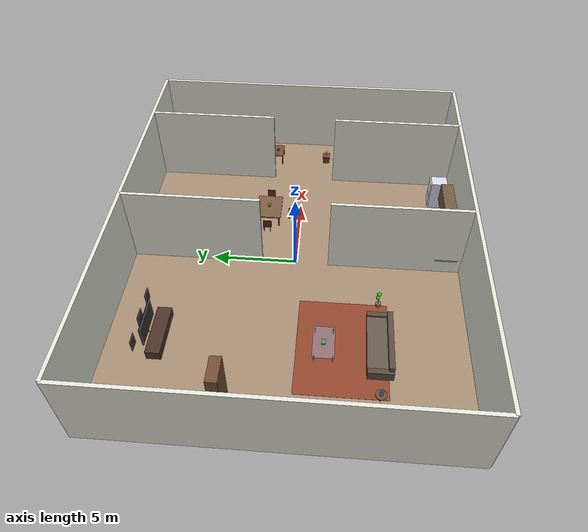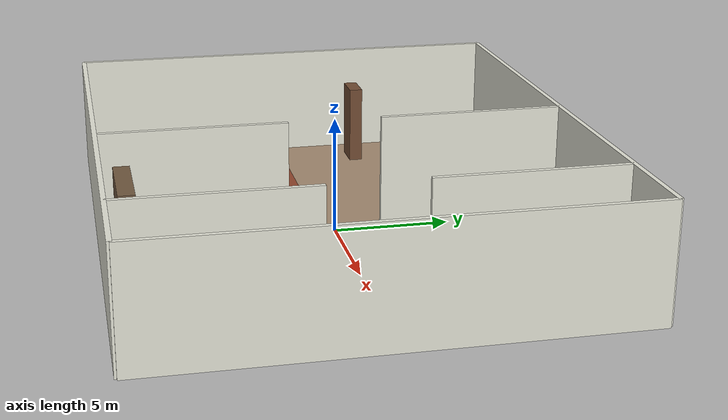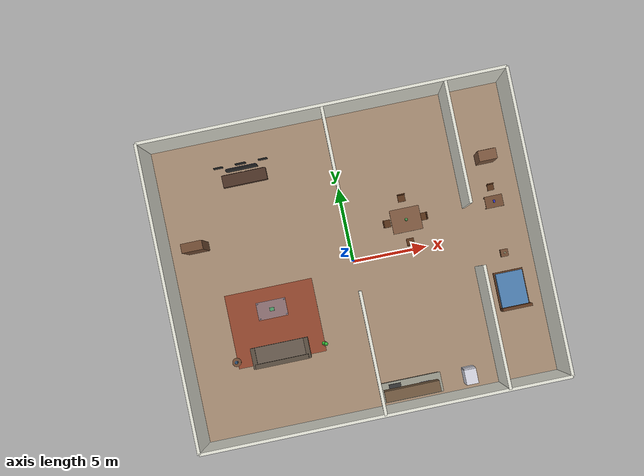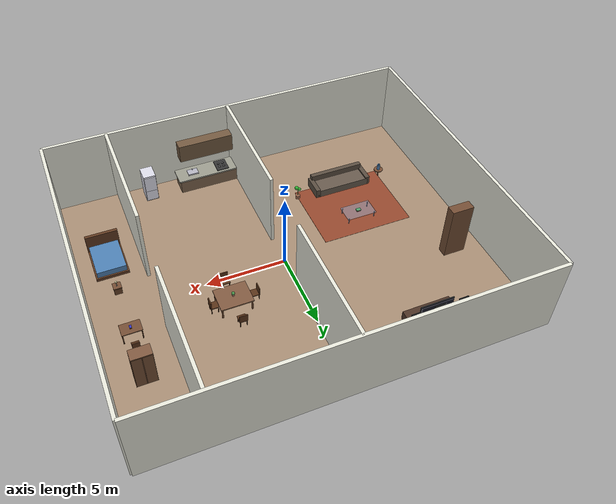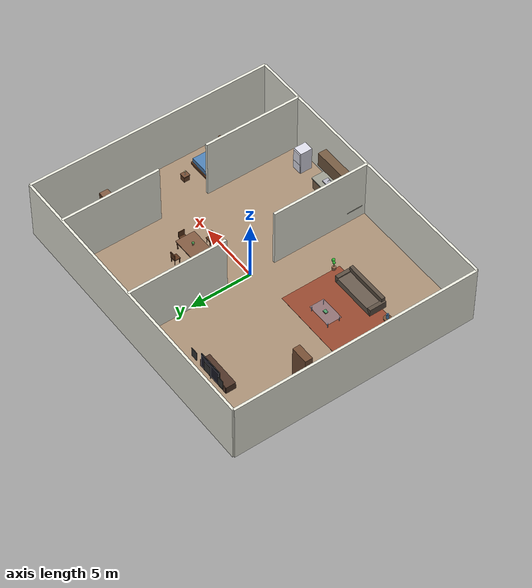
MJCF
<mujoco model="bedroom_scene">
  <compiler angle="degree" coordinate="local" inertiafromgeom="true" autolimits="true"/>

  <option timestep="0.002" gravity="0 0 -9.81" iterations="50" tolerance="1e-10" solver="Newton" jacobian="auto">
    <flag warmstart="enable" energy="enable" contact="enable"/>
  </option>

  <size nconmax="500" njmax="2000" nstack="500000"/>

  <visual>
    <headlight diffuse="0.6 0.6 0.6" ambient="0.3 0.3 0.3" specular="0 0 0"/>
    <rgba haze="0.15 0.25 0.35 1"/>
    <global offwidth="1920" offheight="1080"/>
    <quality shadowsize="2048"/>
    <map stiffness="700" shadowscale="0.5"/>
  </visual>

  <asset>
    <!-- 纹理定义 -->
    <texture name="floor_texture" type="2d" builtin="checker" rgb1="0.7 0.6 0.5" rgb2="0.6 0.5 0.4" width="512" height="512"/>
    <texture name="wall_texture" type="2d" builtin="flat" rgb1="0.9 0.9 0.85" width="512" height="512"/>
    <texture name="wood_texture" type="2d" builtin="checker" rgb1="0.4 0.25 0.15" rgb2="0.35 0.2 0.1" width="512" height="512"/>
    <texture name="wood_dark_texture" type="2d" builtin="checker" rgb1="0.3 0.2 0.1" rgb2="0.25 0.15 0.08" width="512" height="512"/>
    <texture name="fabric_texture" type="2d" builtin="flat" rgb1="0.3 0.5 0.7" width="512" height="512"/>
    <texture name="metal_texture" type="2d" builtin="flat" rgb1="0.7 0.7 0.8" width="512" height="512"/>
    <texture name="glass_texture" type="2d" builtin="flat" rgb1="0.8 0.9 1.0" width="256" height="256"/>
    <texture name="carpet_texture" type="2d" builtin="checker" rgb1="0.6 0.3 0.2" rgb2="0.55 0.25 0.15" width="512" height="512"/>
    <texture name="marble_texture" type="2d" builtin="checker" rgb1="0.9 0.9 0.88" rgb2="0.85 0.85 0.83" width="512" height="512"/>

    <!-- 材质定义 - 改进的物理属性 -->
    <material name="floor_mat" texture="floor_texture" texrepeat="8 8" specular="0.4" shininess="0.15" reflectance="0.1"/>
    <material name="wall_mat" texture="wall_texture" specular="0.1" shininess="0.05" reflectance="0.02"/>
    <material name="wood_mat" texture="wood_texture" texrepeat="2 2" specular="0.3" shininess="0.15" reflectance="0.05"/>
    <material name="wood_dark_mat" texture="wood_dark_texture" texrepeat="2 2" specular="0.3" shininess="0.15" reflectance="0.05"/>
    <material name="fabric_mat" texture="fabric_texture" specular="0.05" shininess="0.02" reflectance="0"/>
    <material name="metal_mat" texture="metal_texture" specular="0.9" shininess="0.6" reflectance="0.3"/>
    <material name="glass_mat" texture="glass_texture" specular="0.95" shininess="0.9" reflectance="0.5" rgba="0.7 0.8 0.9 0.4"/>
    <material name="carpet_mat" texture="carpet_texture" texrepeat="4 4" specular="0.02" shininess="0.01" reflectance="0"/>
    <material name="marble_mat" texture="marble_texture" texrepeat="3 3" specular="0.7" shininess="0.4" reflectance="0.2"/>
  </asset>

  <!-- 默认几何体属性 -->
  <default>
    <default class="furniture">
      <geom contype="1" conaffinity="1" condim="3" friction="0.7 0.005 0.0001" solimp="0.9 0.95 0.001" solref="0.02 1"/>
    </default>

    <default class="decoration">
      <geom contype="0" conaffinity="0" mass="0"/>
    </default>
  </default>

  <worldbody>
    <!-- ========== 光照系统 ========== -->
    <!-- 主全局光源 -->
    <light directional="true" diffuse="0.9 0.9 0.9" specular="0.3 0.3 0.3" pos="0 0 5" dir="0 0 -1" castshadow="true"/>

    <!-- 书房区域光源 (最大房间) -->
    <light mode="fixed" pos="-6 0 4" dir="0 0 -1" directional="false" diffuse="0.5 0.5 0.4" specular="0.1 0.1 0.1" attenuation="1 0 0" cutoff="70"/>

    <!-- 厨房区域光源 (中等房间) -->
    <light mode="fixed" pos="4 0 4.5" dir="0 0 -1" directional="false" diffuse="0.7 0.7 0.7" specular="0.25 0.25 0.25" attenuation="1 0 0" cutoff="60"/>

    <!-- 客厅区域光源 (最小房间) -->
    <light mode="fixed" pos="10 0 4" dir="0 0 -1" directional="false" diffuse="0.6 0.6 0.6" specular="0.2 0.2 0.2" attenuation="1 0 0" cutoff="50"/>

    <!-- ========== 环境结构 ========== -->
    <!-- 地板 -->
    <geom name="floor" type="plane" size="12 10 0.1" pos="0 0 0" material="floor_mat" contype="0" conaffinity="1" condim="3" friction="1 0.005 0.0001"/>

    <!-- 外墙 -->
    <geom name="wall_back" type="box" size="12 0.1 2.5" pos="0 -10 2.5" material="wall_mat" contype="0" conaffinity="1"/>
    <geom name="wall_front" type="box" size="12 0.1 2.5" pos="0 10 2.5" material="wall_mat" contype="0" conaffinity="1"/>
    <geom name="wall_left" type="box" size="0.1 10 2.5" pos="-12 0 2.5" material="wall_mat" contype="0" conaffinity="1"/>
    <geom name="wall_right" type="box" size="0.1 10 2.5" pos="12 0 2.5" material="wall_mat" contype="0" conaffinity="1"/>

    <!-- 内墙 - 分隔三个房间 (客厅:厨房:卧室 = 3:2:1) -->
    <!-- 客厅与厨房之间的墙 (x=0位置，带门洞) -->
    <geom name="wall_living_kitchen_bottom" type="box" size="0.1 4 2.5" pos="0 -6 2.5" material="wall_mat" contype="0" conaffinity="1"/>
    <geom name="wall_living_kitchen_top" type="box" size="0.1 4 2.5" pos="0 6 2.5" material="wall_mat" contype="0" conaffinity="1"/>

    <!-- 厨房与卧室之间的墙 (x=8位置，带门洞) -->
    <geom name="wall_kitchen_bedroom_bottom" type="box" size="0.1 4 2.5" pos="8 -6 2.5" material="wall_mat" contype="0" conaffinity="1"/>
    <geom name="wall_kitchen_bedroom_top" type="box" size="0.1 4 2.5" pos="8 6 2.5" material="wall_mat" contype="0" conaffinity="1"/>

    <!-- ========== 客厅区域 (左侧房间, -12到0, 12m宽) ========== -->
    <!-- 沙发 -->
    <body name="sofa_main" pos="-6 -5 0">
      <geom name="sofa_seat" type="box" size="1.8 0.7 0.25" pos="0 0 0.45" material="fabric_mat" rgba="0.4 0.35 0.3 1"/>
      <geom name="sofa_back" type="box" size="1.8 0.15 0.4" pos="0 -0.55 0.7" material="fabric_mat" rgba="0.35 0.3 0.25 1"/>
      <geom name="sofa_arm_left" type="box" size="0.15 0.7 0.3" pos="-1.8 0 0.5" material="fabric_mat" rgba="0.35 0.3 0.25 1"/>
      <geom name="sofa_arm_right" type="box" size="0.15 0.7 0.3" pos="1.8 0 0.5" material="fabric_mat" rgba="0.35 0.3 0.25 1"/>
    </body>

    <!-- 茶几 -->
    <body name="coffee_table" pos="-6 -2 0">
      <geom name="coffee_table_top" type="box" size="1 0.6 0.02" pos="0 0 0.4" material="glass_mat"/>
      <geom name="coffee_leg1" type="cylinder" size="0.03 0.2" pos="0.9 0.5 0.2" material="metal_mat"/>
      <geom name="coffee_leg2" type="cylinder" size="0.03 0.2" pos="-0.9 0.5 0.2" material="metal_mat"/>
      <geom name="coffee_leg3" type="cylinder" size="0.03 0.2" pos="0.9 -0.5 0.2" material="metal_mat"/>
      <geom name="coffee_leg4" type="cylinder" size="0.03 0.2" pos="-0.9 -0.5 0.2" material="metal_mat"/>
    </body>

    <!-- 电视柜 -->
    <body name="tv_stand" pos="-6 7 0">
      <geom name="tv_stand_body" type="box" size="1.5 0.4 0.3" pos="0 0 0.3" material="wood_mat" rgba="0.3 0.2 0.15 1"/>
      <geom name="tv_stand_door_l" type="box" size="0.7 0.03 0.25" pos="-0.75 0.4 0.3" material="wood_mat" rgba="0.35 0.25 0.2 1"/>
      <geom name="tv_stand_door_r" type="box" size="0.7 0.03 0.25" pos="0.75 0.4 0.3" material="wood_mat" rgba="0.35 0.25 0.2 1"/>
    </body>

    <!-- 电视 -->
    <body name="tv" pos="-6 7.6 0.6">
      <geom name="tv_screen" type="box" size="1 0.05 0.6" pos="0 0 0.6" rgba="0.1 0.1 0.15 1"/>
      <geom name="tv_frame" type="box" size="1.05 0.03 0.65" pos="0 -0.03 0.6" rgba="0.2 0.2 0.2 1"/>
      <geom name="tv_stand_pole" type="cylinder" size="0.04 0.15" pos="0 0 -0.15" rgba="0.3 0.3 0.3 1"/>
    </body>

    <!-- 边桌 -->
    <body name="side_table" pos="-9 -5 0">
      <geom name="side_table_top" type="cylinder" size="0.3 0.03" pos="0 0 0.55" material="wood_mat" rgba="0.45 0.3 0.2 1"/>
      <geom name="side_table_leg" type="cylinder" size="0.04 0.55" pos="0 0 0.275" material="wood_mat" rgba="0.4 0.25 0.15 1"/>
    </body>

    <!-- 地毯 -->
    <body name="carpet" pos="-6 -3 0.005">
      <geom name="carpet_geom" type="box" size="3 2.5 0.005" pos="0 0 0" material="carpet_mat" contype="0" conaffinity="1"/>
    </body>

    <!-- 书架 -->
    <body name="bookshelf" pos="-10 3 0">
      <geom name="bookshelf_body" type="box" size="0.7 0.3 1.8" pos="0 0 1.8" material="wood_mat" rgba="0.45 0.3 0.2 1"/>
    </body>

    <!-- ========== 厨房区域 (中间房间, 0到8, 8m宽) ========== -->
    <!-- 橱柜 (地柜) -->
    <body name="kitchen_cabinet_lower" pos="2 -9 0">
      <geom name="cabinet_lower_body" type="box" size="2 0.6 0.45" pos="0 0 0.45" material="wood_mat" rgba="0.5 0.4 0.3 1"/>
      <geom name="countertop" type="box" size="2.1 0.65 0.05" pos="0 0 0.95" material="wood_mat" rgba="0.6 0.6 0.55 1"/>
    </body>

    <!-- 橱柜 (墙柜) -->
    <body name="kitchen_cabinet_upper" pos="2 -9 3">
      <geom name="cabinet_upper_body" type="box" size="1.8 0.35 0.6" pos="0 0 0" material="wood_mat" rgba="0.45 0.35 0.25 1"/>
    </body>

    <!-- 炉台 -->
    <body name="stove" pos="1 -9 1.0">
      <geom name="stove_top" type="box" size="0.4 0.5 0.05" pos="0 0 0" rgba="0.2 0.2 0.2 1"/>
      <geom name="burner1" type="cylinder" size="0.08 0.01" pos="-0.15 0.15 0.06" rgba="0.3 0.3 0.3 1"/>
      <geom name="burner2" type="cylinder" size="0.08 0.01" pos="0.15 0.15 0.06" rgba="0.3 0.3 0.3 1"/>
      <geom name="burner3" type="cylinder" size="0.08 0.01" pos="-0.15 -0.15 0.06" rgba="0.3 0.3 0.3 1"/>
      <geom name="burner4" type="cylinder" size="0.08 0.01" pos="0.15 -0.15 0.06" rgba="0.3 0.3 0.3 1"/>
    </body>

    <!-- 冰箱 -->
    <body name="refrigerator" pos="6 -9 0">
      <geom name="fridge_body" type="box" size="0.4 0.5 1.0" pos="0 0 1.0" rgba="0.85 0.85 0.9 1" material="metal_mat"/>
      <geom name="fridge_door_upper" type="box" size="0.38 0.05 0.55" pos="0 0.52 1.4" rgba="0.9 0.9 0.95 1"/>
      <geom name="fridge_door_lower" type="box" size="0.38 0.05 0.4" pos="0 0.52 0.5" rgba="0.9 0.9 0.95 1"/>
      <geom name="fridge_handle_upper" type="cylinder" size="0.02 0.15" pos="0.2 0.55 1.4" euler="0 90 0" rgba="0.5 0.5 0.5 1"/>
      <geom name="fridge_handle_lower" type="cylinder" size="0.02 0.15" pos="0.2 0.55 0.5" euler="0 90 0" rgba="0.5 0.5 0.5 1"/>
    </body>

    <!-- 水槽 -->
    <body name="sink" pos="3 -9 1.0">
      <geom name="sink_basin" type="box" size="0.35 0.25 0.15" pos="0 0 -0.05" rgba="0.7 0.7 0.75 1" material="metal_mat"/>
      <geom name="faucet_base" type="cylinder" size="0.02 0.05" pos="0 -0.2 0.05" rgba="0.6 0.6 0.65 1"/>
      <geom name="faucet_neck" type="capsule" size="0.015" fromto="0 -0.2 0.1 0 -0.1 0.25" rgba="0.6 0.6 0.65 1"/>
      <geom name="faucet_spout" type="capsule" size="0.012" fromto="0 -0.1 0.25 0 0.05 0.2" rgba="0.6 0.6 0.65 1"/>
    </body>

    <!-- 餐桌 -->
    <body name="dining_table" pos="4 2 0">
      <geom name="dining_top" type="box" size="1 0.8 0.04" pos="0 0 0.75" material="wood_mat" rgba="0.5 0.35 0.25 1"/>
      <geom name="dining_leg1" type="cylinder" size="0.05 0.375" pos="0.9 0.7 0.375" material="wood_mat" rgba="0.4 0.25 0.15 1"/>
      <geom name="dining_leg2" type="cylinder" size="0.05 0.375" pos="-0.9 0.7 0.375" material="wood_mat" rgba="0.4 0.25 0.15 1"/>
      <geom name="dining_leg3" type="cylinder" size="0.05 0.375" pos="0.9 -0.7 0.375" material="wood_mat" rgba="0.4 0.25 0.15 1"/>
      <geom name="dining_leg4" type="cylinder" size="0.05 0.375" pos="-0.9 -0.7 0.375" material="wood_mat" rgba="0.4 0.25 0.15 1"/>
    </body>

    <!-- 餐椅1 -->
    <body name="dining_chair1" pos="4 0.5 0">
      <geom name="dchair1_seat" type="box" size="0.25 0.25 0.03" pos="0 0 0.45" material="wood_mat" rgba="0.35 0.2 0.1 1"/>
      <geom name="dchair1_back" type="box" size="0.25 0.03 0.25" pos="0 -0.22 0.7" material="wood_mat" rgba="0.35 0.2 0.1 1"/>
      <geom name="dchair1_leg1" type="cylinder" size="0.025 0.225" pos="0.2 0.2 0.225" material="wood_mat" rgba="0.35 0.2 0.1 1"/>
      <geom name="dchair1_leg2" type="cylinder" size="0.025 0.225" pos="-0.2 0.2 0.225" material="wood_mat" rgba="0.35 0.2 0.1 1"/>
      <geom name="dchair1_leg3" type="cylinder" size="0.025 0.225" pos="0.2 -0.2 0.225" material="wood_mat" rgba="0.35 0.2 0.1 1"/>
      <geom name="dchair1_leg4" type="cylinder" size="0.025 0.225" pos="-0.2 -0.2 0.225" material="wood_mat" rgba="0.35 0.2 0.1 1"/>
    </body>

    <!-- 餐椅2 -->
    <body name="dining_chair2" pos="4 3.5 0">
      <geom name="dchair2_seat" type="box" size="0.25 0.25 0.03" pos="0 0 0.45" material="wood_mat" rgba="0.35 0.2 0.1 1"/>
      <geom name="dchair2_back" type="box" size="0.25 0.03 0.25" pos="0 0.22 0.7" material="wood_mat" rgba="0.35 0.2 0.1 1"/>
      <geom name="dchair2_leg1" type="cylinder" size="0.025 0.225" pos="0.2 0.2 0.225" material="wood_mat" rgba="0.35 0.2 0.1 1"/>
      <geom name="dchair2_leg2" type="cylinder" size="0.025 0.225" pos="-0.2 0.2 0.225" material="wood_mat" rgba="0.35 0.2 0.1 1"/>
      <geom name="dchair2_leg3" type="cylinder" size="0.025 0.225" pos="0.2 -0.2 0.225" material="wood_mat" rgba="0.35 0.2 0.1 1"/>
      <geom name="dchair2_leg4" type="cylinder" size="0.025 0.225" pos="-0.2 -0.2 0.225" material="wood_mat" rgba="0.35 0.2 0.1 1"/>
    </body>

    <!-- 餐椅3 -->
    <body name="dining_chair3" pos="2.7 2 0">
      <geom name="dchair3_seat" type="box" size="0.25 0.25 0.03" pos="0 0 0.45" material="wood_mat" rgba="0.35 0.2 0.1 1"/>
      <geom name="dchair3_back" type="box" size="0.03 0.25 0.25" pos="-0.22 0 0.7" material="wood_mat" rgba="0.35 0.2 0.1 1"/>
      <geom name="dchair3_leg1" type="cylinder" size="0.025 0.225" pos="0.2 0.2 0.225" material="wood_mat" rgba="0.35 0.2 0.1 1"/>
      <geom name="dchair3_leg2" type="cylinder" size="0.025 0.225" pos="-0.2 0.2 0.225" material="wood_mat" rgba="0.35 0.2 0.1 1"/>
      <geom name="dchair3_leg3" type="cylinder" size="0.025 0.225" pos="0.2 -0.2 0.225" material="wood_mat" rgba="0.35 0.2 0.1 1"/>
      <geom name="dchair3_leg4" type="cylinder" size="0.025 0.225" pos="-0.2 -0.2 0.225" material="wood_mat" rgba="0.35 0.2 0.1 1"/>
    </body>

    <!-- 餐椅4 -->
    <body name="dining_chair4" pos="5.2 2 0">
      <geom name="dchair4_seat" type="box" size="0.25 0.25 0.03" pos="0 0 0.45" material="wood_mat" rgba="0.35 0.2 0.1 1"/>
      <geom name="dchair4_back" type="box" size="0.03 0.25 0.25" pos="0.22 0 0.7" material="wood_mat" rgba="0.35 0.2 0.1 1"/>
      <geom name="dchair4_leg1" type="cylinder" size="0.025 0.225" pos="0.2 0.2 0.225" material="wood_mat" rgba="0.35 0.2 0.1 1"/>
      <geom name="dchair4_leg2" type="cylinder" size="0.025 0.225" pos="-0.2 0.2 0.225" material="wood_mat" rgba="0.35 0.2 0.1 1"/>
      <geom name="dchair4_leg3" type="cylinder" size="0.025 0.225" pos="0.2 -0.2 0.225" material="wood_mat" rgba="0.35 0.2 0.1 1"/>
      <geom name="dchair4_leg4" type="cylinder" size="0.025 0.225" pos="-0.2 -0.2 0.225" material="wood_mat" rgba="0.35 0.2 0.1 1"/>
    </body>

    <!-- ========== 卧室区域 (右侧房间, 8到12, 4m宽) ========== -->
    <body name="bed" pos="10 -4 0">
      <geom name="mattress" type="box" size="0.9 1.2 0.3" pos="0 0 0.3" material="fabric_mat" rgba="0.3 0.5 0.7 1" density="300"/>
      <geom name="bed_frame" type="box" size="1 1.3 0.1" pos="0 0 0.1" material="wood_mat" density="500"/>
      <geom name="headboard" type="box" size="1 0.1 0.7" pos="0 -1.2 0.7" material="wood_mat" density="500"/>
    </body>

    <!-- 床头柜 -->
    <body name="nightstand" pos="10 -1.5 0">
      <geom name="nightstand_top" type="box" size="0.25 0.25 0.03" pos="0 0 0.5" material="wood_mat" rgba="0.45 0.3 0.2 1"/>
      <geom name="nightstand_body" type="box" size="0.23 0.23 0.22" pos="0 0 0.22" material="wood_mat" rgba="0.4 0.25 0.15 1"/>
    </body>

    <!-- 衣柜 -->
    <body name="wardrobe" pos="10 5 0">
      <geom name="wardrobe_body" type="box" size="0.6 0.35 1.2" pos="0 0 1.2" material="wood_mat" rgba="0.5 0.35 0.25 1"/>
      <geom name="wardrobe_door_left" type="box" size="0.28 0.02 1.15" pos="-0.3 0.35 1.2" material="wood_mat" rgba="0.45 0.3 0.2 1"/>
      <geom name="wardrobe_door_right" type="box" size="0.28 0.02 1.15" pos="0.3 0.35 1.2" material="wood_mat" rgba="0.45 0.3 0.2 1"/>
    </body>

    <!-- 小书桌 -->
    <body name="desk" pos="10 2 0">
      <geom name="desk_top" type="box" size="0.6 0.4 0.03" pos="0 0 0.75" material="wood_mat" rgba="0.45 0.3 0.2 1"/>
      <geom name="desk_leg1" type="cylinder" size="0.03 0.375" pos="0.55 0.35 0.375" material="wood_mat" rgba="0.4 0.25 0.15 1"/>
      <geom name="desk_leg2" type="cylinder" size="0.03 0.375" pos="-0.55 0.35 0.375" material="wood_mat" rgba="0.4 0.25 0.15 1"/>
      <geom name="desk_leg3" type="cylinder" size="0.03 0.375" pos="0.55 -0.35 0.375" material="wood_mat" rgba="0.4 0.25 0.15 1"/>
      <geom name="desk_leg4" type="cylinder" size="0.03 0.375" pos="-0.55 -0.35 0.375" material="wood_mat" rgba="0.4 0.25 0.15 1"/>
    </body>

    <!-- 椅子 -->
    <body name="chair" pos="10 3 0">
      <geom name="chair_seat" type="box" size="0.22 0.22 0.03" pos="0 0 0.45" material="wood_mat" rgba="0.35 0.2 0.1 1"/>
      <geom name="chair_back" type="box" size="0.22 0.03 0.22" pos="0 0.2 0.65" material="wood_mat" rgba="0.35 0.2 0.1 1"/>
      <geom name="chair_leg1" type="cylinder" size="0.02 0.225" pos="0.18 0.18 0.225" material="wood_mat" rgba="0.35 0.2 0.1 1"/>
      <geom name="chair_leg2" type="cylinder" size="0.02 0.225" pos="-0.18 0.18 0.225" material="wood_mat" rgba="0.35 0.2 0.1 1"/>
      <geom name="chair_leg3" type="cylinder" size="0.02 0.225" pos="0.18 -0.18 0.225" material="wood_mat" rgba="0.35 0.2 0.1 1"/>
      <geom name="chair_leg4" type="cylinder" size="0.02 0.225" pos="-0.18 -0.18 0.225" material="wood_mat" rgba="0.35 0.2 0.1 1"/>
    </body>

    <!-- ========== 装饰物品 ========== -->
    <!-- 台灯 (床头柜上) -->
    <body name="lamp" pos="10 -1.5 0.53" childclass="decoration">
      <geom name="lamp_base" type="cylinder" size="0.04 0.02" rgba="0.6 0.6 0.6 1"/>
      <geom name="lamp_pole" type="cylinder" size="0.008 0.12" pos="0 0 0.14" rgba="0.5 0.5 0.5 1"/>
      <geom name="lamp_shade" type="cylinder" size="0.06 0.05" pos="0 0 0.3" rgba="0.9 0.9 0.7 0.8"/>
    </body>

    <!-- 书本 (书桌上) -->
    <body name="books" pos="10 2 0.78" childclass="decoration">
      <geom name="book1" type="box" size="0.06 0.1 0.015" pos="0 0 0.015" rgba="0.8 0.2 0.2 1"/>
      <geom name="book2" type="box" size="0.06 0.1 0.015" pos="0 0 0.045" rgba="0.2 0.8 0.2 1"/>
      <geom name="book3" type="box" size="0.06 0.1 0.015" pos="0 0 0.075" rgba="0.2 0.2 0.8 1"/>
    </body>

    <!-- 客厅花瓶 (边桌上) -->
    <body name="vase" pos="-9 -5 0.58" childclass="decoration">
      <geom name="vase_body" type="cylinder" size="0.1 0.18" pos="0 0 0.18" rgba="0.3 0.5 0.7 1"/>
      <geom name="vase_neck" type="cylinder" size="0.05 0.06" pos="0 0 0.4" rgba="0.3 0.5 0.7 1"/>
    </body>

    <!-- 茶几上的书 -->
    <body name="coffee_table_books" pos="-6 -2 0.42" childclass="decoration">
      <geom name="ctbook1" type="box" size="0.15 0.12 0.02" pos="0 0 0" rgba="0.7 0.3 0.2 1"/>
      <geom name="ctbook2" type="box" size="0.15 0.12 0.02" pos="0 0 0.04" rgba="0.3 0.6 0.4 1"/>
    </body>

    <!-- 客厅盆栽 -->
    <body name="plant1" pos="-3 -5 0" childclass="decoration">
      <geom name="pot1" type="cylinder" size="0.15 0.12" pos="0 0 0.12" rgba="0.6 0.4 0.3 1"/>
      <geom name="plant1_stem" type="cylinder" size="0.02 0.35" pos="0 0 0.6" rgba="0.2 0.6 0.2 1"/>
      <geom name="plant1_leaf1" type="sphere" size="0.13" pos="0.09 0 0.9" rgba="0.2 0.7 0.2 1"/>
      <geom name="plant1_leaf2" type="sphere" size="0.11" pos="-0.07 0.07 0.8" rgba="0.2 0.7 0.2 1"/>
    </body>

    <!-- 厨房盆栽 -->
    <body name="kitchen_plant" pos="4 2 0.79" childclass="decoration">
      <geom name="kpot" type="cylinder" size="0.08 0.06" pos="0 0 0.06" rgba="0.7 0.5 0.4 1"/>
      <geom name="kplant" type="sphere" size="0.1" pos="0 0 0.18" rgba="0.3 0.6 0.3 1"/>
    </body>

    <!-- 相框墙饰 (客厅) -->
    <body name="wall_frame1" pos="-6 7.85 1.5" childclass="decoration">
      <geom name="frame1" type="box" size="0.35 0.02 0.45" pos="0 0 0" rgba="0.2 0.2 0.2 1"/>
    </body>
    <body name="wall_frame2" pos="-7.5 7.85 1.5" childclass="decoration">
      <geom name="frame2" type="box" size="0.3 0.02 0.4" pos="0 0 0" rgba="0.2 0.2 0.2 1"/>
    </body>
    <body name="wall_frame3" pos="-4.5 7.85 1.5" childclass="decoration">
      <geom name="frame3" type="box" size="0.3 0.02 0.4" pos="0 0 0" rgba="0.2 0.2 0.2 1"/>
    </body>

    <!-- ========== 相机系统 ========== -->
    <camera name="fixed_overview" pos="0 -15 10" quat="0.92388 0.38268 0 0" fovy="65"/>
    <camera name="living_room_view" pos="-6 -8 3.5" quat="0.9239 0.3827 0 0" fovy="60"/>
    <camera name="kitchen_view" pos="4 -8 3.5" quat="0.9239 0.3827 0 0" fovy="55"/>
    <camera name="bedroom_view" pos="10 -8 3" quat="0.9239 0.3827 0 0" fovy="50"/>

  </worldbody>

  <actuator>
  </actuator>

  <!-- ========== 传感器系统 ========== -->
  <sensor>
  </sensor>

</mujoco>
